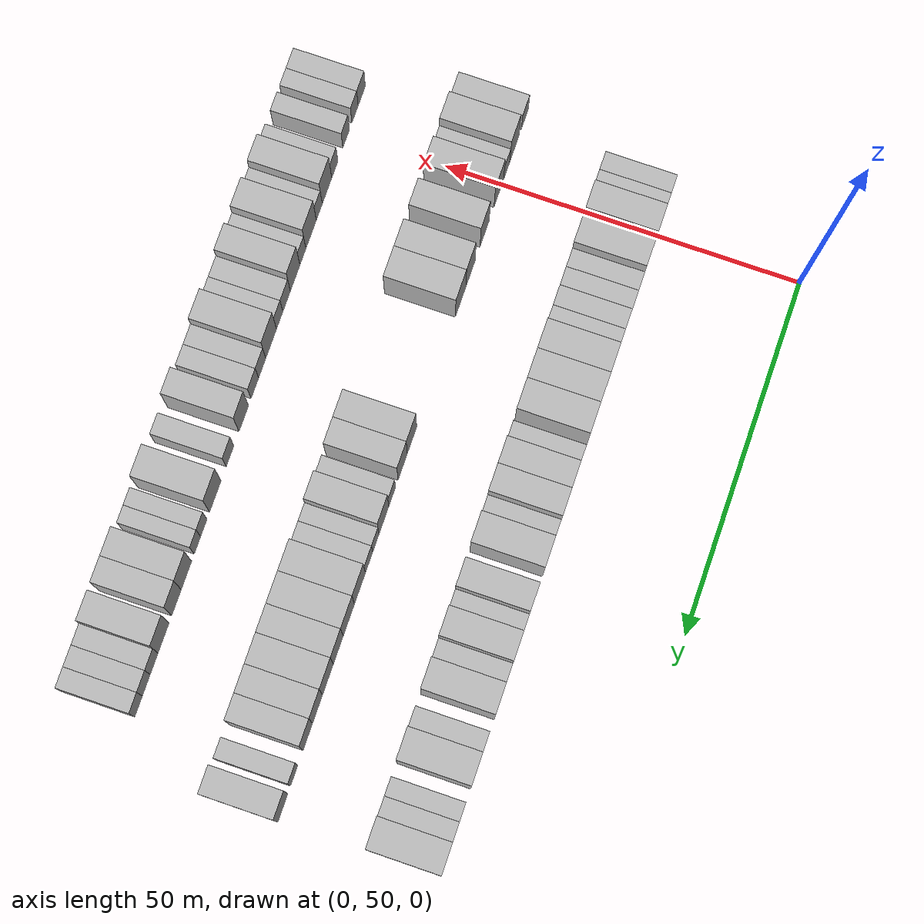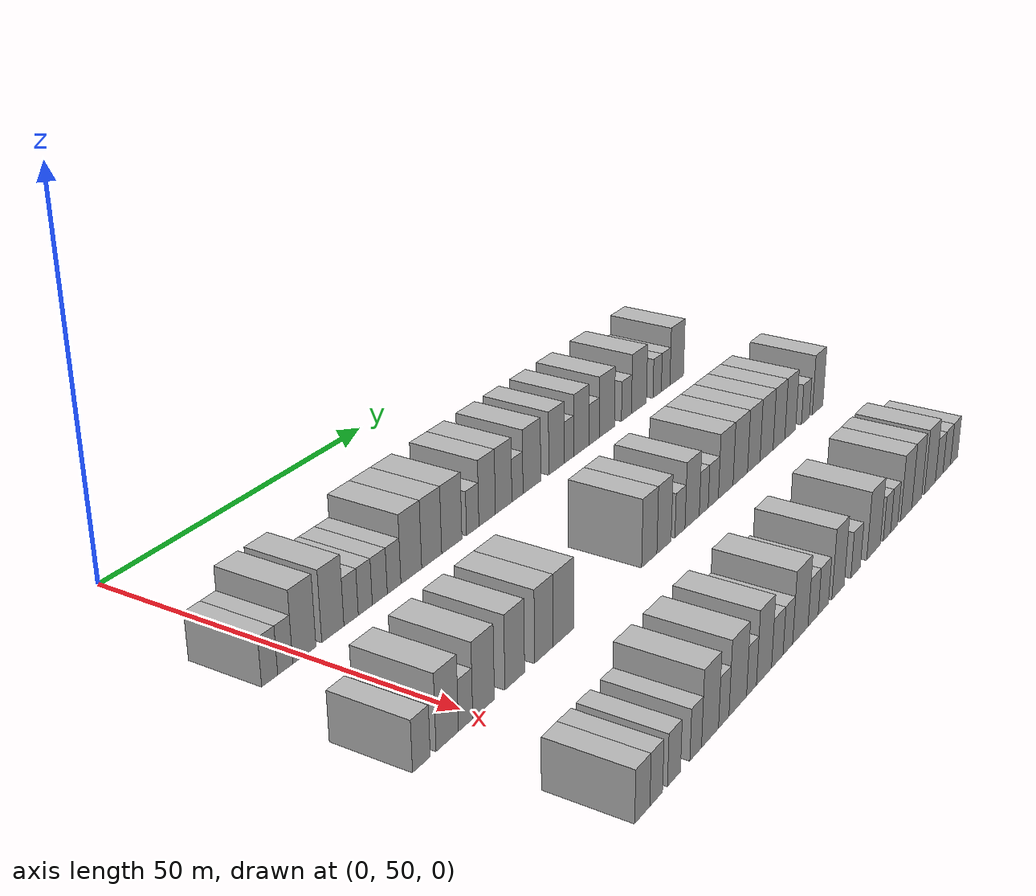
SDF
<sdf version="1.6">
 <world name="default">
  <model name="building_73">
   <static>1</static>
   <pose>25.0000 44.2441 0 0.000000 0.000000 0.000000</pose>
   <link name="link">
    <pose>0 0 3.00 0 0 0</pose>
    <collision name="collision"><geometry><box><size>10.0000 2.6072 6.0000</size></box></geometry></collision>
    <visual name="visual">
     <cast_shadows>0</cast_shadows>
     <geometry><box><size>10.0000 2.6072 6.0000</size></box></geometry>
     <material>
      <script>
       <uri>model://HANNAS_wall/materials/scripts</uri>
       <uri>model://HANNAS_wall/materials/textures</uri>
       <name>vrc/HANNAS_wall</name>
      </script>
     </material>
    </visual>
   </link>
  </model>
  <model name="building_74">
   <static>1</static>
   <pose>25.0000 46.8008 0 0.000000 0.000000 0.000000</pose>
   <link name="link">
    <pose>0 0 3.00 0 0 0</pose>
    <collision name="collision"><geometry><box><size>10.0000 2.5062 6.0000</size></box></geometry></collision>
    <visual name="visual">
     <cast_shadows>0</cast_shadows>
     <geometry><box><size>10.0000 2.5062 6.0000</size></box></geometry>
     <material>
      <script>
       <uri>model://HANNAS_wall/materials/scripts</uri>
       <uri>model://HANNAS_wall/materials/textures</uri>
       <name>vrc/HANNAS_wall</name>
      </script>
     </material>
    </visual>
   </link>
  </model>
  <model name="building_75">
   <static>1</static>
   <pose>25.0000 50.0268 0 0.000000 0.000000 0.000000</pose>
   <link name="link">
    <pose>0 0 4.50 0 0 0</pose>
    <collision name="collision"><geometry><box><size>10.0000 3.9459 9.0000</size></box></geometry></collision>
    <visual name="visual">
     <cast_shadows>0</cast_shadows>
     <geometry><box><size>10.0000 3.9459 9.0000</size></box></geometry>
     <material>
      <script>
       <uri>model://HANNAS_wall/materials/scripts</uri>
       <uri>model://HANNAS_wall/materials/textures</uri>
       <name>vrc/HANNAS_wall</name>
      </script>
     </material>
    </visual>
   </link>
  </model>
  <model name="building_76">
   <static>1</static>
   <pose>25.0000 54.9735 0 0.000000 0.000000 0.000000</pose>
   <link name="link">
    <pose>0 0 4.50 0 0 0</pose>
    <collision name="collision"><geometry><box><size>10.0000 3.9475 9.0000</size></box></geometry></collision>
    <visual name="visual">
     <cast_shadows>0</cast_shadows>
     <geometry><box><size>10.0000 3.9475 9.0000</size></box></geometry>
     <material>
      <script>
       <uri>model://HANNAS_wall/materials/scripts</uri>
       <uri>model://HANNAS_wall/materials/textures</uri>
       <name>vrc/HANNAS_wall</name>
      </script>
     </material>
    </visual>
   </link>
  </model>
  <model name="building_77">
   <static>1</static>
   <pose>25.0000 58.2599 0 0.000000 0.000000 0.000000</pose>
   <link name="link">
    <pose>0 0 3.00 0 0 0</pose>
    <collision name="collision"><geometry><box><size>10.0000 2.6252 6.0000</size></box></geometry></collision>
    <visual name="visual">
     <cast_shadows>0</cast_shadows>
     <geometry><box><size>10.0000 2.6252 6.0000</size></box></geometry>
     <material>
      <script>
       <uri>model://HANNAS_wall/materials/scripts</uri>
       <uri>model://HANNAS_wall/materials/textures</uri>
       <name>vrc/HANNAS_wall</name>
      </script>
     </material>
    </visual>
   </link>
  </model>
  <model name="building_78">
   <static>1</static>
   <pose>25.0000 60.8814 0 0.000000 0.000000 0.000000</pose>
   <link name="link">
    <pose>0 0 3.00 0 0 0</pose>
    <collision name="collision"><geometry><box><size>10.0000 2.6178 6.0000</size></box></geometry></collision>
    <visual name="visual">
     <cast_shadows>0</cast_shadows>
     <geometry><box><size>10.0000 2.6178 6.0000</size></box></geometry>
     <material>
      <script>
       <uri>model://HANNAS_wall/materials/scripts</uri>
       <uri>model://HANNAS_wall/materials/textures</uri>
       <name>vrc/HANNAS_wall</name>
      </script>
     </material>
    </visual>
   </link>
  </model>
  <model name="building_79">
   <static>1</static>
   <pose>25.0000 63.6194 0 0.000000 0.000000 0.000000</pose>
   <link name="link">
    <pose>0 0 3.00 0 0 0</pose>
    <collision name="collision"><geometry><box><size>10.0000 2.8582 6.0000</size></box></geometry></collision>
    <visual name="visual">
     <cast_shadows>0</cast_shadows>
     <geometry><box><size>10.0000 2.8582 6.0000</size></box></geometry>
     <material>
      <script>
       <uri>model://HANNAS_wall/materials/scripts</uri>
       <uri>model://HANNAS_wall/materials/textures</uri>
       <name>vrc/HANNAS_wall</name>
      </script>
     </material>
    </visual>
   </link>
  </model>
  <model name="building_80">
   <static>1</static>
   <pose>25.0000 66.3783 0 0.000000 0.000000 0.000000</pose>
   <link name="link">
    <pose>0 0 3.00 0 0 0</pose>
    <collision name="collision"><geometry><box><size>10.0000 2.6597 6.0000</size></box></geometry></collision>
    <visual name="visual">
     <cast_shadows>0</cast_shadows>
     <geometry><box><size>10.0000 2.6597 6.0000</size></box></geometry>
     <material>
      <script>
       <uri>model://HANNAS_wall/materials/scripts</uri>
       <uri>model://HANNAS_wall/materials/textures</uri>
       <name>vrc/HANNAS_wall</name>
      </script>
     </material>
    </visual>
   </link>
  </model>
  <model name="building_81">
   <static>1</static>
   <pose>25.0000 69.7934 0 0.000000 0.000000 0.000000</pose>
   <link name="link">
    <pose>0 0 4.50 0 0 0</pose>
    <collision name="collision"><geometry><box><size>10.0000 4.1704 9.0000</size></box></geometry></collision>
    <visual name="visual">
     <cast_shadows>0</cast_shadows>
     <geometry><box><size>10.0000 4.1704 9.0000</size></box></geometry>
     <material>
      <script>
       <uri>model://HANNAS_wall/materials/scripts</uri>
       <uri>model://HANNAS_wall/materials/textures</uri>
       <name>vrc/HANNAS_wall</name>
      </script>
     </material>
    </visual>
   </link>
  </model>
  <model name="building_82">
   <static>1</static>
   <pose>25.0000 73.9491 0 0.000000 0.000000 0.000000</pose>
   <link name="link">
    <pose>0 0 4.50 0 0 0</pose>
    <collision name="collision"><geometry><box><size>10.0000 4.1411 9.0000</size></box></geometry></collision>
    <visual name="visual">
     <cast_shadows>0</cast_shadows>
     <geometry><box><size>10.0000 4.1411 9.0000</size></box></geometry>
     <material>
      <script>
       <uri>model://HANNAS_wall/materials/scripts</uri>
       <uri>model://HANNAS_wall/materials/textures</uri>
       <name>vrc/HANNAS_wall</name>
      </script>
     </material>
    </visual>
   </link>
  </model>
  <model name="building_83">
   <static>1</static>
   <pose>25.0000 78.1835 0 0.000000 0.000000 0.000000</pose>
   <link name="link">
    <pose>0 0 4.50 0 0 0</pose>
    <collision name="collision"><geometry><box><size>10.0000 4.3276 9.0000</size></box></geometry></collision>
    <visual name="visual">
     <cast_shadows>0</cast_shadows>
     <geometry><box><size>10.0000 4.3276 9.0000</size></box></geometry>
     <material>
      <script>
       <uri>model://HANNAS_wall/materials/scripts</uri>
       <uri>model://HANNAS_wall/materials/textures</uri>
       <name>vrc/HANNAS_wall</name>
      </script>
     </material>
    </visual>
   </link>
  </model>
  <model name="building_84">
   <static>1</static>
   <pose>25.0000 82.7207 0 0.000000 0.000000 0.000000</pose>
   <link name="link">
    <pose>0 0 3.00 0 0 0</pose>
    <collision name="collision"><geometry><box><size>10.0000 2.7469 6.0000</size></box></geometry></collision>
    <visual name="visual">
     <cast_shadows>0</cast_shadows>
     <geometry><box><size>10.0000 2.7469 6.0000</size></box></geometry>
     <material>
      <script>
       <uri>model://HANNAS_wall/materials/scripts</uri>
       <uri>model://HANNAS_wall/materials/textures</uri>
       <name>vrc/HANNAS_wall</name>
      </script>
     </material>
    </visual>
   </link>
  </model>
  <model name="building_85">
   <static>1</static>
   <pose>25.0000 85.9663 0 0.000000 0.000000 0.000000</pose>
   <link name="link">
    <pose>0 0 4.50 0 0 0</pose>
    <collision name="collision"><geometry><box><size>10.0000 3.7441 9.0000</size></box></geometry></collision>
    <visual name="visual">
     <cast_shadows>0</cast_shadows>
     <geometry><box><size>10.0000 3.7441 9.0000</size></box></geometry>
     <material>
      <script>
       <uri>model://HANNAS_wall/materials/scripts</uri>
       <uri>model://HANNAS_wall/materials/textures</uri>
       <name>vrc/HANNAS_wall</name>
      </script>
     </material>
    </visual>
   </link>
  </model>
  <model name="building_86">
   <static>1</static>
   <pose>25.0000 89.7606 0 0.000000 0.000000 0.000000</pose>
   <link name="link">
    <pose>0 0 4.50 0 0 0</pose>
    <collision name="collision"><geometry><box><size>10.0000 3.8445 9.0000</size></box></geometry></collision>
    <visual name="visual">
     <cast_shadows>0</cast_shadows>
     <geometry><box><size>10.0000 3.8445 9.0000</size></box></geometry>
     <material>
      <script>
       <uri>model://HANNAS_wall/materials/scripts</uri>
       <uri>model://HANNAS_wall/materials/textures</uri>
       <name>vrc/HANNAS_wall</name>
      </script>
     </material>
    </visual>
   </link>
  </model>
  <model name="building_87">
   <static>1</static>
   <pose>25.0000 93.0144 0 0.000000 0.000000 0.000000</pose>
   <link name="link">
    <pose>0 0 3.00 0 0 0</pose>
    <collision name="collision"><geometry><box><size>10.0000 2.6631 6.0000</size></box></geometry></collision>
    <visual name="visual">
     <cast_shadows>0</cast_shadows>
     <geometry><box><size>10.0000 2.6631 6.0000</size></box></geometry>
     <material>
      <script>
       <uri>model://HANNAS_wall/materials/scripts</uri>
       <uri>model://HANNAS_wall/materials/textures</uri>
       <name>vrc/HANNAS_wall</name>
      </script>
     </material>
    </visual>
   </link>
  </model>
  <model name="building_88">
   <static>1</static>
   <pose>25.0000 96.5111 0 0.000000 0.000000 0.000000</pose>
   <link name="link">
    <pose>0 0 4.50 0 0 0</pose>
    <collision name="collision"><geometry><box><size>10.0000 4.3302 9.0000</size></box></geometry></collision>
    <visual name="visual">
     <cast_shadows>0</cast_shadows>
     <geometry><box><size>10.0000 4.3302 9.0000</size></box></geometry>
     <material>
      <script>
       <uri>model://HANNAS_wall/materials/scripts</uri>
       <uri>model://HANNAS_wall/materials/textures</uri>
       <name>vrc/HANNAS_wall</name>
      </script>
     </material>
    </visual>
   </link>
  </model>
  <model name="building_89">
   <static>1</static>
   <pose>25.0000 102.6360 0 0.000000 0.000000 0.000000</pose>
   <link name="link">
    <pose>0 0 4.50 0 0 0</pose>
    <collision name="collision"><geometry><box><size>10.0000 3.9195 9.0000</size></box></geometry></collision>
    <visual name="visual">
     <cast_shadows>0</cast_shadows>
     <geometry><box><size>10.0000 3.9195 9.0000</size></box></geometry>
     <material>
      <script>
       <uri>model://HANNAS_wall/materials/scripts</uri>
       <uri>model://HANNAS_wall/materials/textures</uri>
       <name>vrc/HANNAS_wall</name>
      </script>
     </material>
    </visual>
   </link>
  </model>
  <model name="building_90">
   <static>1</static>
   <pose>25.0000 105.8727 0 0.000000 0.000000 0.000000</pose>
   <link name="link">
    <pose>0 0 3.00 0 0 0</pose>
    <collision name="collision"><geometry><box><size>10.0000 2.5539 6.0000</size></box></geometry></collision>
    <visual name="visual">
     <cast_shadows>0</cast_shadows>
     <geometry><box><size>10.0000 2.5539 6.0000</size></box></geometry>
     <material>
      <script>
       <uri>model://HANNAS_wall/materials/scripts</uri>
       <uri>model://HANNAS_wall/materials/textures</uri>
       <name>vrc/HANNAS_wall</name>
      </script>
     </material>
    </visual>
   </link>
  </model>
  <model name="building_91">
   <static>1</static>
   <pose>25.0000 109.1905 0 0.000000 0.000000 0.000000</pose>
   <link name="link">
    <pose>0 0 4.50 0 0 0</pose>
    <collision name="collision"><geometry><box><size>10.0000 4.0817 9.0000</size></box></geometry></collision>
    <visual name="visual">
     <cast_shadows>0</cast_shadows>
     <geometry><box><size>10.0000 4.0817 9.0000</size></box></geometry>
     <material>
      <script>
       <uri>model://HANNAS_wall/materials/scripts</uri>
       <uri>model://HANNAS_wall/materials/textures</uri>
       <name>vrc/HANNAS_wall</name>
      </script>
     </material>
    </visual>
   </link>
  </model>
  <model name="building_92">
   <static>1</static>
   <pose>25.0000 112.6387 0 0.000000 0.000000 0.000000</pose>
   <link name="link">
    <pose>0 0 3.00 0 0 0</pose>
    <collision name="collision"><geometry><box><size>10.0000 2.8148 6.0000</size></box></geometry></collision>
    <visual name="visual">
     <cast_shadows>0</cast_shadows>
     <geometry><box><size>10.0000 2.8148 6.0000</size></box></geometry>
     <material>
      <script>
       <uri>model://HANNAS_wall/materials/scripts</uri>
       <uri>model://HANNAS_wall/materials/textures</uri>
       <name>vrc/HANNAS_wall</name>
      </script>
     </material>
    </visual>
   </link>
  </model>
  <model name="building_93">
   <static>1</static>
   <pose>25.0000 116.1936 0 0.000000 0.000000 0.000000</pose>
   <link name="link">
    <pose>0 0 4.50 0 0 0</pose>
    <collision name="collision"><geometry><box><size>10.0000 4.2950 9.0000</size></box></geometry></collision>
    <visual name="visual">
     <cast_shadows>0</cast_shadows>
     <geometry><box><size>10.0000 4.2950 9.0000</size></box></geometry>
     <material>
      <script>
       <uri>model://HANNAS_wall/materials/scripts</uri>
       <uri>model://HANNAS_wall/materials/textures</uri>
       <name>vrc/HANNAS_wall</name>
      </script>
     </material>
    </visual>
   </link>
  </model>
  <model name="building_94">
   <static>1</static>
   <pose>25.0000 121.7956 0 0.000000 0.000000 0.000000</pose>
   <link name="link">
    <pose>0 0 3.00 0 0 0</pose>
    <collision name="collision"><geometry><box><size>10.0000 2.9092 6.0000</size></box></geometry></collision>
    <visual name="visual">
     <cast_shadows>0</cast_shadows>
     <geometry><box><size>10.0000 2.9092 6.0000</size></box></geometry>
     <material>
      <script>
       <uri>model://HANNAS_wall/materials/scripts</uri>
       <uri>model://HANNAS_wall/materials/textures</uri>
       <name>vrc/HANNAS_wall</name>
      </script>
     </material>
    </visual>
   </link>
  </model>
  <model name="building_95">
   <static>1</static>
   <pose>25.0000 125.4892 0 0.000000 0.000000 0.000000</pose>
   <link name="link">
    <pose>0 0 4.50 0 0 0</pose>
    <collision name="collision"><geometry><box><size>10.0000 4.4780 9.0000</size></box></geometry></collision>
    <visual name="visual">
     <cast_shadows>0</cast_shadows>
     <geometry><box><size>10.0000 4.4780 9.0000</size></box></geometry>
     <material>
      <script>
       <uri>model://HANNAS_wall/materials/scripts</uri>
       <uri>model://HANNAS_wall/materials/textures</uri>
       <name>vrc/HANNAS_wall</name>
      </script>
     </material>
    </visual>
   </link>
  </model>
  <model name="building_96">
   <static>1</static>
   <pose>25.0000 131.0168 0 0.000000 0.000000 0.000000</pose>
   <link name="link">
    <pose>0 0 3.00 0 0 0</pose>
    <collision name="collision"><geometry><box><size>10.0000 2.5773 6.0000</size></box></geometry></collision>
    <visual name="visual">
     <cast_shadows>0</cast_shadows>
     <geometry><box><size>10.0000 2.5773 6.0000</size></box></geometry>
     <material>
      <script>
       <uri>model://HANNAS_wall/materials/scripts</uri>
       <uri>model://HANNAS_wall/materials/textures</uri>
       <name>vrc/HANNAS_wall</name>
      </script>
     </material>
    </visual>
   </link>
  </model>
  <model name="building_97">
   <static>1</static>
   <pose>25.0000 133.6578 0 0.000000 0.000000 0.000000</pose>
   <link name="link">
    <pose>0 0 3.00 0 0 0</pose>
    <collision name="collision"><geometry><box><size>10.0000 2.7047 6.0000</size></box></geometry></collision>
    <visual name="visual">
     <cast_shadows>0</cast_shadows>
     <geometry><box><size>10.0000 2.7047 6.0000</size></box></geometry>
     <material>
      <script>
       <uri>model://HANNAS_wall/materials/scripts</uri>
       <uri>model://HANNAS_wall/materials/textures</uri>
       <name>vrc/HANNAS_wall</name>
      </script>
     </material>
    </visual>
   </link>
  </model>
  <model name="building_98">
   <static>1</static>
   <pose>25.0000 137.1930 0 0.000000 0.000000 0.000000</pose>
   <link name="link">
    <pose>0 0 4.50 0 0 0</pose>
    <collision name="collision"><geometry><box><size>10.0000 4.3657 9.0000</size></box></geometry></collision>
    <visual name="visual">
     <cast_shadows>0</cast_shadows>
     <geometry><box><size>10.0000 4.3657 9.0000</size></box></geometry>
     <material>
      <script>
       <uri>model://HANNAS_wall/materials/scripts</uri>
       <uri>model://HANNAS_wall/materials/textures</uri>
       <name>vrc/HANNAS_wall</name>
      </script>
     </material>
    </visual>
   </link>
  </model>
  <model name="building_195">
   <static>1</static>
   <pose>47.0000 40.2890 0 0.000000 0.000000 0.000000</pose>
   <link name="link">
    <pose>0 0 3.00 0 0 0</pose>
    <collision name="collision"><geometry><box><size>10.0000 2.9867 6.0000</size></box></geometry></collision>
    <visual name="visual">
     <cast_shadows>0</cast_shadows>
     <geometry><box><size>10.0000 2.9867 6.0000</size></box></geometry>
     <material>
      <script>
       <uri>model://HANNAS_wall/materials/scripts</uri>
       <uri>model://HANNAS_wall/materials/textures</uri>
       <name>vrc/HANNAS_wall</name>
      </script>
     </material>
    </visual>
   </link>
  </model>
  <model name="building_196">
   <static>1</static>
   <pose>47.0000 44.7496 0 0.000000 0.000000 0.000000</pose>
   <link name="link">
    <pose>0 0 4.50 0 0 0</pose>
    <collision name="collision"><geometry><box><size>10.0000 3.9344 9.0000</size></box></geometry></collision>
    <visual name="visual">
     <cast_shadows>0</cast_shadows>
     <geometry><box><size>10.0000 3.9344 9.0000</size></box></geometry>
     <material>
      <script>
       <uri>model://HANNAS_wall/materials/scripts</uri>
       <uri>model://HANNAS_wall/materials/textures</uri>
       <name>vrc/HANNAS_wall</name>
      </script>
     </material>
    </visual>
   </link>
  </model>
  <model name="building_197">
   <static>1</static>
   <pose>47.0000 48.0013 0 0.000000 0.000000 0.000000</pose>
   <link name="link">
    <pose>0 0 3.00 0 0 0</pose>
    <collision name="collision"><geometry><box><size>10.0000 2.5690 6.0000</size></box></geometry></collision>
    <visual name="visual">
     <cast_shadows>0</cast_shadows>
     <geometry><box><size>10.0000 2.5690 6.0000</size></box></geometry>
     <material>
      <script>
       <uri>model://HANNAS_wall/materials/scripts</uri>
       <uri>model://HANNAS_wall/materials/textures</uri>
       <name>vrc/HANNAS_wall</name>
      </script>
     </material>
    </visual>
   </link>
  </model>
  <model name="building_198">
   <static>1</static>
   <pose>47.0000 51.3048 0 0.000000 0.000000 0.000000</pose>
   <link name="link">
    <pose>0 0 4.50 0 0 0</pose>
    <collision name="collision"><geometry><box><size>10.0000 4.0379 9.0000</size></box></geometry></collision>
    <visual name="visual">
     <cast_shadows>0</cast_shadows>
     <geometry><box><size>10.0000 4.0379 9.0000</size></box></geometry>
     <material>
      <script>
       <uri>model://HANNAS_wall/materials/scripts</uri>
       <uri>model://HANNAS_wall/materials/textures</uri>
       <name>vrc/HANNAS_wall</name>
      </script>
     </material>
    </visual>
   </link>
  </model>
  <model name="building_199">
   <static>1</static>
   <pose>47.0000 57.2557 0 0.000000 0.000000 0.000000</pose>
   <link name="link">
    <pose>0 0 4.50 0 0 0</pose>
    <collision name="collision"><geometry><box><size>10.0000 3.8639 9.0000</size></box></geometry></collision>
    <visual name="visual">
     <cast_shadows>0</cast_shadows>
     <geometry><box><size>10.0000 3.8639 9.0000</size></box></geometry>
     <material>
      <script>
       <uri>model://HANNAS_wall/materials/scripts</uri>
       <uri>model://HANNAS_wall/materials/textures</uri>
       <name>vrc/HANNAS_wall</name>
      </script>
     </material>
    </visual>
   </link>
  </model>
  <model name="building_200">
   <static>1</static>
   <pose>47.0000 63.1103 0 0.000000 0.000000 0.000000</pose>
   <link name="link">
    <pose>0 0 4.50 0 0 0</pose>
    <collision name="collision"><geometry><box><size>10.0000 3.8454 9.0000</size></box></geometry></collision>
    <visual name="visual">
     <cast_shadows>0</cast_shadows>
     <geometry><box><size>10.0000 3.8454 9.0000</size></box></geometry>
     <material>
      <script>
       <uri>model://HANNAS_wall/materials/scripts</uri>
       <uri>model://HANNAS_wall/materials/textures</uri>
       <name>vrc/HANNAS_wall</name>
      </script>
     </material>
    </visual>
   </link>
  </model>
  <model name="building_201">
   <static>1</static>
   <pose>47.0000 67.2042 0 0.000000 0.000000 0.000000</pose>
   <link name="link">
    <pose>0 0 4.50 0 0 0</pose>
    <collision name="collision"><geometry><box><size>10.0000 4.3424 9.0000</size></box></geometry></collision>
    <visual name="visual">
     <cast_shadows>0</cast_shadows>
     <geometry><box><size>10.0000 4.3424 9.0000</size></box></geometry>
     <material>
      <script>
       <uri>model://HANNAS_wall/materials/scripts</uri>
       <uri>model://HANNAS_wall/materials/textures</uri>
       <name>vrc/HANNAS_wall</name>
      </script>
     </material>
    </visual>
   </link>
  </model>
  <model name="building_202">
   <static>1</static>
   <pose>47.0000 87.1349 0 0.000000 0.000000 0.000000</pose>
   <link name="link">
    <pose>0 0 4.50 0 0 0</pose>
    <collision name="collision"><geometry><box><size>10.0000 3.8397 9.0000</size></box></geometry></collision>
    <visual name="visual">
     <cast_shadows>0</cast_shadows>
     <geometry><box><size>10.0000 3.8397 9.0000</size></box></geometry>
     <material>
      <script>
       <uri>model://HANNAS_wall/materials/scripts</uri>
       <uri>model://HANNAS_wall/materials/textures</uri>
       <name>vrc/HANNAS_wall</name>
      </script>
     </material>
    </visual>
   </link>
  </model>
  <model name="building_203">
   <static>1</static>
   <pose>47.0000 90.8974 0 0.000000 0.000000 0.000000</pose>
   <link name="link">
    <pose>0 0 4.50 0 0 0</pose>
    <collision name="collision"><geometry><box><size>10.0000 3.6853 9.0000</size></box></geometry></collision>
    <visual name="visual">
     <cast_shadows>0</cast_shadows>
     <geometry><box><size>10.0000 3.6853 9.0000</size></box></geometry>
     <material>
      <script>
       <uri>model://HANNAS_wall/materials/scripts</uri>
       <uri>model://HANNAS_wall/materials/textures</uri>
       <name>vrc/HANNAS_wall</name>
      </script>
     </material>
    </visual>
   </link>
  </model>
  <model name="building_204">
   <static>1</static>
   <pose>47.0000 95.0865 0 0.000000 0.000000 0.000000</pose>
   <link name="link">
    <pose>0 0 3.00 0 0 0</pose>
    <collision name="collision"><geometry><box><size>10.0000 2.6930 6.0000</size></box></geometry></collision>
    <visual name="visual">
     <cast_shadows>0</cast_shadows>
     <geometry><box><size>10.0000 2.6930 6.0000</size></box></geometry>
     <material>
      <script>
       <uri>model://HANNAS_wall/materials/scripts</uri>
       <uri>model://HANNAS_wall/materials/textures</uri>
       <name>vrc/HANNAS_wall</name>
      </script>
     </material>
    </visual>
   </link>
  </model>
  <model name="building_205">
   <static>1</static>
   <pose>47.0000 98.3861 0 0.000000 0.000000 0.000000</pose>
   <link name="link">
    <pose>0 0 4.50 0 0 0</pose>
    <collision name="collision"><geometry><box><size>10.0000 3.9061 9.0000</size></box></geometry></collision>
    <visual name="visual">
     <cast_shadows>0</cast_shadows>
     <geometry><box><size>10.0000 3.9061 9.0000</size></box></geometry>
     <material>
      <script>
       <uri>model://HANNAS_wall/materials/scripts</uri>
       <uri>model://HANNAS_wall/materials/textures</uri>
       <name>vrc/HANNAS_wall</name>
      </script>
     </material>
    </visual>
   </link>
  </model>
  <model name="building_206">
   <static>1</static>
   <pose>47.0000 101.5928 0 0.000000 0.000000 0.000000</pose>
   <link name="link">
    <pose>0 0 3.00 0 0 0</pose>
    <collision name="collision"><geometry><box><size>10.0000 2.5072 6.0000</size></box></geometry></collision>
    <visual name="visual">
     <cast_shadows>0</cast_shadows>
     <geometry><box><size>10.0000 2.5072 6.0000</size></box></geometry>
     <material>
      <script>
       <uri>model://HANNAS_wall/materials/scripts</uri>
       <uri>model://HANNAS_wall/materials/textures</uri>
       <name>vrc/HANNAS_wall</name>
      </script>
     </material>
    </visual>
   </link>
  </model>
  <model name="building_207">
   <static>1</static>
   <pose>47.0000 104.3020 0 0.000000 0.000000 0.000000</pose>
   <link name="link">
    <pose>0 0 3.00 0 0 0</pose>
    <collision name="collision"><geometry><box><size>10.0000 2.9112 6.0000</size></box></geometry></collision>
    <visual name="visual">
     <cast_shadows>0</cast_shadows>
     <geometry><box><size>10.0000 2.9112 6.0000</size></box></geometry>
     <material>
      <script>
       <uri>model://HANNAS_wall/materials/scripts</uri>
       <uri>model://HANNAS_wall/materials/textures</uri>
       <name>vrc/HANNAS_wall</name>
      </script>
     </material>
    </visual>
   </link>
  </model>
  <model name="building_208">
   <static>1</static>
   <pose>47.0000 107.9121 0 0.000000 0.000000 0.000000</pose>
   <link name="link">
    <pose>0 0 4.50 0 0 0</pose>
    <collision name="collision"><geometry><box><size>10.0000 4.3089 9.0000</size></box></geometry></collision>
    <visual name="visual">
     <cast_shadows>0</cast_shadows>
     <geometry><box><size>10.0000 4.3089 9.0000</size></box></geometry>
     <material>
      <script>
       <uri>model://HANNAS_wall/materials/scripts</uri>
       <uri>model://HANNAS_wall/materials/textures</uri>
       <name>vrc/HANNAS_wall</name>
      </script>
     </material>
    </visual>
   </link>
  </model>
  <model name="building_209">
   <static>1</static>
   <pose>47.0000 112.2687 0 0.000000 0.000000 0.000000</pose>
   <link name="link">
    <pose>0 0 4.50 0 0 0</pose>
    <collision name="collision"><geometry><box><size>10.0000 4.4043 9.0000</size></box></geometry></collision>
    <visual name="visual">
     <cast_shadows>0</cast_shadows>
     <geometry><box><size>10.0000 4.4043 9.0000</size></box></geometry>
     <material>
      <script>
       <uri>model://HANNAS_wall/materials/scripts</uri>
       <uri>model://HANNAS_wall/materials/textures</uri>
       <name>vrc/HANNAS_wall</name>
      </script>
     </material>
    </visual>
   </link>
  </model>
  <model name="building_210">
   <static>1</static>
   <pose>47.0000 116.4085 0 0.000000 0.000000 0.000000</pose>
   <link name="link">
    <pose>0 0 4.50 0 0 0</pose>
    <collision name="collision"><geometry><box><size>10.0000 3.8751 9.0000</size></box></geometry></collision>
    <visual name="visual">
     <cast_shadows>0</cast_shadows>
     <geometry><box><size>10.0000 3.8751 9.0000</size></box></geometry>
     <material>
      <script>
       <uri>model://HANNAS_wall/materials/scripts</uri>
       <uri>model://HANNAS_wall/materials/textures</uri>
       <name>vrc/HANNAS_wall</name>
      </script>
     </material>
    </visual>
   </link>
  </model>
  <model name="building_211">
   <static>1</static>
   <pose>47.0000 120.4426 0 0.000000 0.000000 0.000000</pose>
   <link name="link">
    <pose>0 0 4.50 0 0 0</pose>
    <collision name="collision"><geometry><box><size>10.0000 4.1931 9.0000</size></box></geometry></collision>
    <visual name="visual">
     <cast_shadows>0</cast_shadows>
     <geometry><box><size>10.0000 4.1931 9.0000</size></box></geometry>
     <material>
      <script>
       <uri>model://HANNAS_wall/materials/scripts</uri>
       <uri>model://HANNAS_wall/materials/textures</uri>
       <name>vrc/HANNAS_wall</name>
      </script>
     </material>
    </visual>
   </link>
  </model>
  <model name="building_212">
   <static>1</static>
   <pose>47.0000 124.4775 0 0.000000 0.000000 0.000000</pose>
   <link name="link">
    <pose>0 0 4.50 0 0 0</pose>
    <collision name="collision"><geometry><box><size>10.0000 3.8768 9.0000</size></box></geometry></collision>
    <visual name="visual">
     <cast_shadows>0</cast_shadows>
     <geometry><box><size>10.0000 3.8768 9.0000</size></box></geometry>
     <material>
      <script>
       <uri>model://HANNAS_wall/materials/scripts</uri>
       <uri>model://HANNAS_wall/materials/textures</uri>
       <name>vrc/HANNAS_wall</name>
      </script>
     </material>
    </visual>
   </link>
  </model>
  <model name="building_213">
   <static>1</static>
   <pose>47.0000 128.2464 0 0.000000 0.000000 0.000000</pose>
   <link name="link">
    <pose>0 0 4.50 0 0 0</pose>
    <collision name="collision"><geometry><box><size>10.0000 3.6611 9.0000</size></box></geometry></collision>
    <visual name="visual">
     <cast_shadows>0</cast_shadows>
     <geometry><box><size>10.0000 3.6611 9.0000</size></box></geometry>
     <material>
      <script>
       <uri>model://HANNAS_wall/materials/scripts</uri>
       <uri>model://HANNAS_wall/materials/textures</uri>
       <name>vrc/HANNAS_wall</name>
      </script>
     </material>
    </visual>
   </link>
  </model>
  <model name="building_214">
   <static>1</static>
   <pose>47.0000 133.4782 0 0.000000 0.000000 0.000000</pose>
   <link name="link">
    <pose>0 0 3.00 0 0 0</pose>
    <collision name="collision"><geometry><box><size>10.0000 2.8026 6.0000</size></box></geometry></collision>
    <visual name="visual">
     <cast_shadows>0</cast_shadows>
     <geometry><box><size>10.0000 2.8026 6.0000</size></box></geometry>
     <material>
      <script>
       <uri>model://HANNAS_wall/materials/scripts</uri>
       <uri>model://HANNAS_wall/materials/textures</uri>
       <name>vrc/HANNAS_wall</name>
      </script>
     </material>
    </visual>
   </link>
  </model>
  <model name="building_215">
   <static>1</static>
   <pose>47.0000 137.7986 0 0.000000 0.000000 0.000000</pose>
   <link name="link">
    <pose>0 0 4.50 0 0 0</pose>
    <collision name="collision"><geometry><box><size>10.0000 3.8381 9.0000</size></box></geometry></collision>
    <visual name="visual">
     <cast_shadows>0</cast_shadows>
     <geometry><box><size>10.0000 3.8381 9.0000</size></box></geometry>
     <material>
      <script>
       <uri>model://HANNAS_wall/materials/scripts</uri>
       <uri>model://HANNAS_wall/materials/textures</uri>
       <name>vrc/HANNAS_wall</name>
      </script>
     </material>
    </visual>
   </link>
  </model>
  <model name="building_313">
   <static>1</static>
   <pose>69.0000 44.2895 0 0.000000 0.000000 0.000000</pose>
   <link name="link">
    <pose>0 0 3.00 0 0 0</pose>
    <collision name="collision"><geometry><box><size>10.0000 2.9602 6.0000</size></box></geometry></collision>
    <visual name="visual">
     <cast_shadows>0</cast_shadows>
     <geometry><box><size>10.0000 2.9602 6.0000</size></box></geometry>
     <material>
      <script>
       <uri>model://HANNAS_wall/materials/scripts</uri>
       <uri>model://HANNAS_wall/materials/textures</uri>
       <name>vrc/HANNAS_wall</name>
      </script>
     </material>
    </visual>
   </link>
  </model>
  <model name="building_314">
   <static>1</static>
   <pose>69.0000 47.0434 0 0.000000 0.000000 0.000000</pose>
   <link name="link">
    <pose>0 0 3.00 0 0 0</pose>
    <collision name="collision"><geometry><box><size>10.0000 2.5474 6.0000</size></box></geometry></collision>
    <visual name="visual">
     <cast_shadows>0</cast_shadows>
     <geometry><box><size>10.0000 2.5474 6.0000</size></box></geometry>
     <material>
      <script>
       <uri>model://HANNAS_wall/materials/scripts</uri>
       <uri>model://HANNAS_wall/materials/textures</uri>
       <name>vrc/HANNAS_wall</name>
      </script>
     </material>
    </visual>
   </link>
  </model>
  <model name="building_315">
   <static>1</static>
   <pose>69.0000 50.6720 0 0.000000 0.000000 0.000000</pose>
   <link name="link">
    <pose>0 0 3.00 0 0 0</pose>
    <collision name="collision"><geometry><box><size>10.0000 2.7098 6.0000</size></box></geometry></collision>
    <visual name="visual">
     <cast_shadows>0</cast_shadows>
     <geometry><box><size>10.0000 2.7098 6.0000</size></box></geometry>
     <material>
      <script>
       <uri>model://HANNAS_wall/materials/scripts</uri>
       <uri>model://HANNAS_wall/materials/textures</uri>
       <name>vrc/HANNAS_wall</name>
      </script>
     </material>
    </visual>
   </link>
  </model>
  <model name="building_316">
   <static>1</static>
   <pose>69.0000 55.2923 0 0.000000 0.000000 0.000000</pose>
   <link name="link">
    <pose>0 0 3.00 0 0 0</pose>
    <collision name="collision"><geometry><box><size>10.0000 2.5307 6.0000</size></box></geometry></collision>
    <visual name="visual">
     <cast_shadows>0</cast_shadows>
     <geometry><box><size>10.0000 2.5307 6.0000</size></box></geometry>
     <material>
      <script>
       <uri>model://HANNAS_wall/materials/scripts</uri>
       <uri>model://HANNAS_wall/materials/textures</uri>
       <name>vrc/HANNAS_wall</name>
      </script>
     </material>
    </visual>
   </link>
  </model>
  <model name="building_317">
   <static>1</static>
   <pose>69.0000 58.4613 0 0.000000 0.000000 0.000000</pose>
   <link name="link">
    <pose>0 0 4.50 0 0 0</pose>
    <collision name="collision"><geometry><box><size>10.0000 3.8073 9.0000</size></box></geometry></collision>
    <visual name="visual">
     <cast_shadows>0</cast_shadows>
     <geometry><box><size>10.0000 3.8073 9.0000</size></box></geometry>
     <material>
      <script>
       <uri>model://HANNAS_wall/materials/scripts</uri>
       <uri>model://HANNAS_wall/materials/textures</uri>
       <name>vrc/HANNAS_wall</name>
      </script>
     </material>
    </visual>
   </link>
  </model>
  <model name="building_318">
   <static>1</static>
   <pose>69.0000 61.5698 0 0.000000 0.000000 0.000000</pose>
   <link name="link">
    <pose>0 0 3.00 0 0 0</pose>
    <collision name="collision"><geometry><box><size>10.0000 2.4098 6.0000</size></box></geometry></collision>
    <visual name="visual">
     <cast_shadows>0</cast_shadows>
     <geometry><box><size>10.0000 2.4098 6.0000</size></box></geometry>
     <material>
      <script>
       <uri>model://HANNAS_wall/materials/scripts</uri>
       <uri>model://HANNAS_wall/materials/textures</uri>
       <name>vrc/HANNAS_wall</name>
      </script>
     </material>
    </visual>
   </link>
  </model>
  <model name="building_319">
   <static>1</static>
   <pose>69.0000 64.8631 0 0.000000 0.000000 0.000000</pose>
   <link name="link">
    <pose>0 0 4.50 0 0 0</pose>
    <collision name="collision"><geometry><box><size>10.0000 4.1768 9.0000</size></box></geometry></collision>
    <visual name="visual">
     <cast_shadows>0</cast_shadows>
     <geometry><box><size>10.0000 4.1768 9.0000</size></box></geometry>
     <material>
      <script>
       <uri>model://HANNAS_wall/materials/scripts</uri>
       <uri>model://HANNAS_wall/materials/textures</uri>
       <name>vrc/HANNAS_wall</name>
      </script>
     </material>
    </visual>
   </link>
  </model>
  <model name="building_320">
   <static>1</static>
   <pose>69.0000 68.1564 0 0.000000 0.000000 0.000000</pose>
   <link name="link">
    <pose>0 0 3.00 0 0 0</pose>
    <collision name="collision"><geometry><box><size>10.0000 2.4099 6.0000</size></box></geometry></collision>
    <visual name="visual">
     <cast_shadows>0</cast_shadows>
     <geometry><box><size>10.0000 2.4099 6.0000</size></box></geometry>
     <material>
      <script>
       <uri>model://HANNAS_wall/materials/scripts</uri>
       <uri>model://HANNAS_wall/materials/textures</uri>
       <name>vrc/HANNAS_wall</name>
      </script>
     </material>
    </visual>
   </link>
  </model>
  <model name="building_321">
   <static>1</static>
   <pose>69.0000 71.2574 0 0.000000 0.000000 0.000000</pose>
   <link name="link">
    <pose>0 0 4.50 0 0 0</pose>
    <collision name="collision"><geometry><box><size>10.0000 3.7920 9.0000</size></box></geometry></collision>
    <visual name="visual">
     <cast_shadows>0</cast_shadows>
     <geometry><box><size>10.0000 3.7920 9.0000</size></box></geometry>
     <material>
      <script>
       <uri>model://HANNAS_wall/materials/scripts</uri>
       <uri>model://HANNAS_wall/materials/textures</uri>
       <name>vrc/HANNAS_wall</name>
      </script>
     </material>
    </visual>
   </link>
  </model>
  <model name="building_322">
   <static>1</static>
   <pose>69.0000 74.6479 0 0.000000 0.000000 0.000000</pose>
   <link name="link">
    <pose>0 0 3.00 0 0 0</pose>
    <collision name="collision"><geometry><box><size>10.0000 2.9891 6.0000</size></box></geometry></collision>
    <visual name="visual">
     <cast_shadows>0</cast_shadows>
     <geometry><box><size>10.0000 2.9891 6.0000</size></box></geometry>
     <material>
      <script>
       <uri>model://HANNAS_wall/materials/scripts</uri>
       <uri>model://HANNAS_wall/materials/textures</uri>
       <name>vrc/HANNAS_wall</name>
      </script>
     </material>
    </visual>
   </link>
  </model>
  <model name="building_323">
   <static>1</static>
   <pose>69.0000 77.4070 0 0.000000 0.000000 0.000000</pose>
   <link name="link">
    <pose>0 0 3.00 0 0 0</pose>
    <collision name="collision"><geometry><box><size>10.0000 2.5292 6.0000</size></box></geometry></collision>
    <visual name="visual">
     <cast_shadows>0</cast_shadows>
     <geometry><box><size>10.0000 2.5292 6.0000</size></box></geometry>
     <material>
      <script>
       <uri>model://HANNAS_wall/materials/scripts</uri>
       <uri>model://HANNAS_wall/materials/textures</uri>
       <name>vrc/HANNAS_wall</name>
      </script>
     </material>
    </visual>
   </link>
  </model>
  <model name="building_324">
   <static>1</static>
   <pose>69.0000 80.7782 0 0.000000 0.000000 0.000000</pose>
   <link name="link">
    <pose>0 0 4.50 0 0 0</pose>
    <collision name="collision"><geometry><box><size>10.0000 4.2132 9.0000</size></box></geometry></collision>
    <visual name="visual">
     <cast_shadows>0</cast_shadows>
     <geometry><box><size>10.0000 4.2132 9.0000</size></box></geometry>
     <material>
      <script>
       <uri>model://HANNAS_wall/materials/scripts</uri>
       <uri>model://HANNAS_wall/materials/textures</uri>
       <name>vrc/HANNAS_wall</name>
      </script>
     </material>
    </visual>
   </link>
  </model>
  <model name="building_325">
   <static>1</static>
   <pose>69.0000 84.3147 0 0.000000 0.000000 0.000000</pose>
   <link name="link">
    <pose>0 0 3.00 0 0 0</pose>
    <collision name="collision"><geometry><box><size>10.0000 2.8599 6.0000</size></box></geometry></collision>
    <visual name="visual">
     <cast_shadows>0</cast_shadows>
     <geometry><box><size>10.0000 2.8599 6.0000</size></box></geometry>
     <material>
      <script>
       <uri>model://HANNAS_wall/materials/scripts</uri>
       <uri>model://HANNAS_wall/materials/textures</uri>
       <name>vrc/HANNAS_wall</name>
      </script>
     </material>
    </visual>
   </link>
  </model>
  <model name="building_326">
   <static>1</static>
   <pose>69.0000 87.2166 0 0.000000 0.000000 0.000000</pose>
   <link name="link">
    <pose>0 0 3.00 0 0 0</pose>
    <collision name="collision"><geometry><box><size>10.0000 2.9439 6.0000</size></box></geometry></collision>
    <visual name="visual">
     <cast_shadows>0</cast_shadows>
     <geometry><box><size>10.0000 2.9439 6.0000</size></box></geometry>
     <material>
      <script>
       <uri>model://HANNAS_wall/materials/scripts</uri>
       <uri>model://HANNAS_wall/materials/textures</uri>
       <name>vrc/HANNAS_wall</name>
      </script>
     </material>
    </visual>
   </link>
  </model>
  <model name="building_327">
   <static>1</static>
   <pose>69.0000 91.5396 0 0.000000 0.000000 0.000000</pose>
   <link name="link">
    <pose>0 0 4.50 0 0 0</pose>
    <collision name="collision"><geometry><box><size>10.0000 3.7021 9.0000</size></box></geometry></collision>
    <visual name="visual">
     <cast_shadows>0</cast_shadows>
     <geometry><box><size>10.0000 3.7021 9.0000</size></box></geometry>
     <material>
      <script>
       <uri>model://HANNAS_wall/materials/scripts</uri>
       <uri>model://HANNAS_wall/materials/textures</uri>
       <name>vrc/HANNAS_wall</name>
      </script>
     </material>
    </visual>
   </link>
  </model>
  <model name="building_328">
   <static>1</static>
   <pose>69.0000 96.8751 0 0.000000 0.000000 0.000000</pose>
   <link name="link">
    <pose>0 0 3.00 0 0 0</pose>
    <collision name="collision"><geometry><box><size>10.0000 2.9688 6.0000</size></box></geometry></collision>
    <visual name="visual">
     <cast_shadows>0</cast_shadows>
     <geometry><box><size>10.0000 2.9688 6.0000</size></box></geometry>
     <material>
      <script>
       <uri>model://HANNAS_wall/materials/scripts</uri>
       <uri>model://HANNAS_wall/materials/textures</uri>
       <name>vrc/HANNAS_wall</name>
      </script>
     </material>
    </visual>
   </link>
  </model>
  <model name="building_329">
   <static>1</static>
   <pose>69.0000 102.5644 0 0.000000 0.000000 0.000000</pose>
   <link name="link">
    <pose>0 0 4.50 0 0 0</pose>
    <collision name="collision"><geometry><box><size>10.0000 4.4098 9.0000</size></box></geometry></collision>
    <visual name="visual">
     <cast_shadows>0</cast_shadows>
     <geometry><box><size>10.0000 4.4098 9.0000</size></box></geometry>
     <material>
      <script>
       <uri>model://HANNAS_wall/materials/scripts</uri>
       <uri>model://HANNAS_wall/materials/textures</uri>
       <name>vrc/HANNAS_wall</name>
      </script>
     </material>
    </visual>
   </link>
  </model>
  <model name="building_330">
   <static>1</static>
   <pose>69.0000 106.9902 0 0.000000 0.000000 0.000000</pose>
   <link name="link">
    <pose>0 0 3.00 0 0 0</pose>
    <collision name="collision"><geometry><box><size>10.0000 2.4418 6.0000</size></box></geometry></collision>
    <visual name="visual">
     <cast_shadows>0</cast_shadows>
     <geometry><box><size>10.0000 2.4418 6.0000</size></box></geometry>
     <material>
      <script>
       <uri>model://HANNAS_wall/materials/scripts</uri>
       <uri>model://HANNAS_wall/materials/textures</uri>
       <name>vrc/HANNAS_wall</name>
      </script>
     </material>
    </visual>
   </link>
  </model>
  <model name="building_331">
   <static>1</static>
   <pose>69.0000 109.4251 0 0.000000 0.000000 0.000000</pose>
   <link name="link">
    <pose>0 0 3.00 0 0 0</pose>
    <collision name="collision"><geometry><box><size>10.0000 2.4282 6.0000</size></box></geometry></collision>
    <visual name="visual">
     <cast_shadows>0</cast_shadows>
     <geometry><box><size>10.0000 2.4282 6.0000</size></box></geometry>
     <material>
      <script>
       <uri>model://HANNAS_wall/materials/scripts</uri>
       <uri>model://HANNAS_wall/materials/textures</uri>
       <name>vrc/HANNAS_wall</name>
      </script>
     </material>
    </visual>
   </link>
  </model>
  <model name="building_332">
   <static>1</static>
   <pose>69.0000 113.6183 0 0.000000 0.000000 0.000000</pose>
   <link name="link">
    <pose>0 0 4.50 0 0 0</pose>
    <collision name="collision"><geometry><box><size>10.0000 3.9581 9.0000</size></box></geometry></collision>
    <visual name="visual">
     <cast_shadows>0</cast_shadows>
     <geometry><box><size>10.0000 3.9581 9.0000</size></box></geometry>
     <material>
      <script>
       <uri>model://HANNAS_wall/materials/scripts</uri>
       <uri>model://HANNAS_wall/materials/textures</uri>
       <name>vrc/HANNAS_wall</name>
      </script>
     </material>
    </visual>
   </link>
  </model>
  <model name="building_333">
   <static>1</static>
   <pose>69.0000 117.4082 0 0.000000 0.000000 0.000000</pose>
   <link name="link">
    <pose>0 0 4.50 0 0 0</pose>
    <collision name="collision"><geometry><box><size>10.0000 3.6219 9.0000</size></box></geometry></collision>
    <visual name="visual">
     <cast_shadows>0</cast_shadows>
     <geometry><box><size>10.0000 3.6219 9.0000</size></box></geometry>
     <material>
      <script>
       <uri>model://HANNAS_wall/materials/scripts</uri>
       <uri>model://HANNAS_wall/materials/textures</uri>
       <name>vrc/HANNAS_wall</name>
      </script>
     </material>
    </visual>
   </link>
  </model>
  <model name="building_334">
   <static>1</static>
   <pose>69.0000 122.2885 0 0.000000 0.000000 0.000000</pose>
   <link name="link">
    <pose>0 0 4.50 0 0 0</pose>
    <collision name="collision"><geometry><box><size>10.0000 4.1386 9.0000</size></box></geometry></collision>
    <visual name="visual">
     <cast_shadows>0</cast_shadows>
     <geometry><box><size>10.0000 4.1386 9.0000</size></box></geometry>
     <material>
      <script>
       <uri>model://HANNAS_wall/materials/scripts</uri>
       <uri>model://HANNAS_wall/materials/textures</uri>
       <name>vrc/HANNAS_wall</name>
      </script>
     </material>
    </visual>
   </link>
  </model>
  <model name="building_335">
   <static>1</static>
   <pose>69.0000 125.8208 0 0.000000 0.000000 0.000000</pose>
   <link name="link">
    <pose>0 0 3.00 0 0 0</pose>
    <collision name="collision"><geometry><box><size>10.0000 2.9258 6.0000</size></box></geometry></collision>
    <visual name="visual">
     <cast_shadows>0</cast_shadows>
     <geometry><box><size>10.0000 2.9258 6.0000</size></box></geometry>
     <material>
      <script>
       <uri>model://HANNAS_wall/materials/scripts</uri>
       <uri>model://HANNAS_wall/materials/textures</uri>
       <name>vrc/HANNAS_wall</name>
      </script>
     </material>
    </visual>
   </link>
  </model>
  <model name="building_336">
   <static>1</static>
   <pose>69.0000 128.7544 0 0.000000 0.000000 0.000000</pose>
   <link name="link">
    <pose>0 0 3.00 0 0 0</pose>
    <collision name="collision"><geometry><box><size>10.0000 2.9414 6.0000</size></box></geometry></collision>
    <visual name="visual">
     <cast_shadows>0</cast_shadows>
     <geometry><box><size>10.0000 2.9414 6.0000</size></box></geometry>
     <material>
      <script>
       <uri>model://HANNAS_wall/materials/scripts</uri>
       <uri>model://HANNAS_wall/materials/textures</uri>
       <name>vrc/HANNAS_wall</name>
      </script>
     </material>
    </visual>
   </link>
  </model>
  <model name="building_337">
   <static>1</static>
   <pose>69.0000 131.6533 0 0.000000 0.000000 0.000000</pose>
   <link name="link">
    <pose>0 0 3.00 0 0 0</pose>
    <collision name="collision"><geometry><box><size>10.0000 2.8564 6.0000</size></box></geometry></collision>
    <visual name="visual">
     <cast_shadows>0</cast_shadows>
     <geometry><box><size>10.0000 2.8564 6.0000</size></box></geometry>
     <material>
      <script>
       <uri>model://HANNAS_wall/materials/scripts</uri>
       <uri>model://HANNAS_wall/materials/textures</uri>
       <name>vrc/HANNAS_wall</name>
      </script>
     </material>
    </visual>
   </link>
  </model>
 </world>
</sdf>
